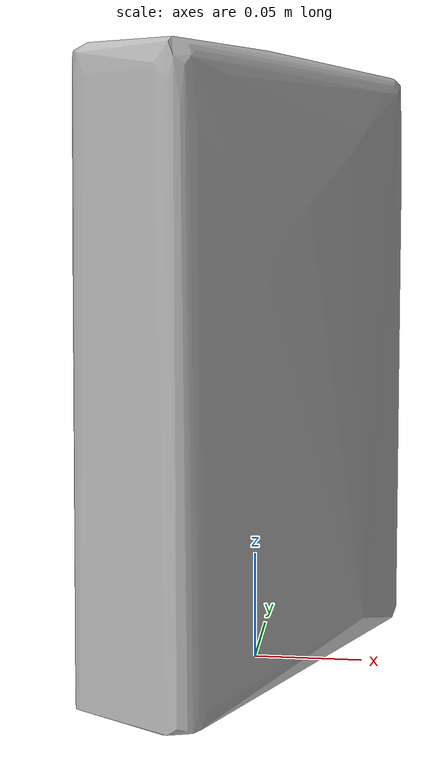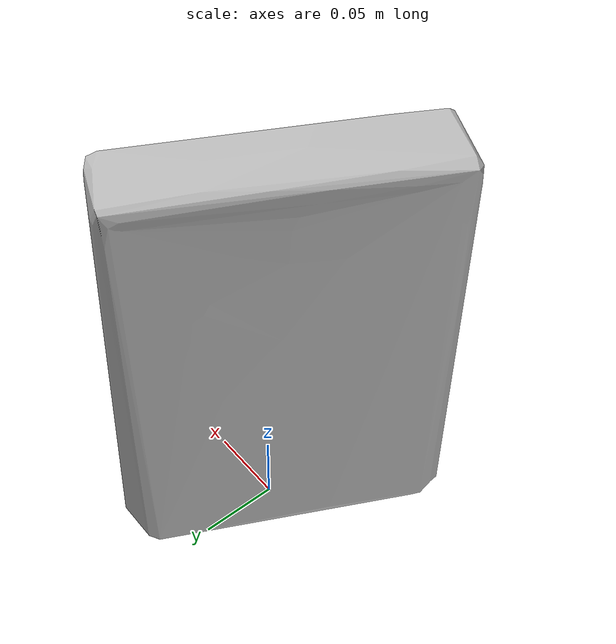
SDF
<?xml version='1.0'?>
<sdf version="1.4">
  <model name="honey_bunches_of_oats_honey_roasted">
    <static>false</static>
    <link name="link">
      <inertial>
        <pose>0.0008548083953833864 -0.011365052530220965 0.1353398946552691 3.123255409539517 -0.0068512377851028825 2.6689869646011624</pose>
        <mass>0.32814865266984183</mass>
        <inertia>
          <ixx>0.0029438842325770044</ixx>
          <ixy>1.2488589981365888e-18</ixy>
          <ixz>1.746979615096785e-20</ixz>
          <iyy>0.002054897289235628</iyy>
          <iyz>3.139250692328792e-20</iyz>
          <izz>0.0011031010443872656</izz>
        </inertia>
      </inertial>
      <collision name="collision">
        <geometry>
          <mesh>
            <!-- Use a downsampled mesh for collisions -->
            <uri>model:///honey_bunches_of_oats_honey_roasted/honey_bunches_of_oats_honey_roasted_250_collision.obj</uri>
	        </mesh>
        </geometry>
        <surface>
      </surface>
      </collision>
      <visual name="visual">
        <geometry>
          <mesh>
            <uri>model:///honey_bunches_of_oats_honey_roasted/optimized_tsdf_texture_mapped_mesh.obj</uri>
	        </mesh>
        </geometry>
        <material>
          <script>
            <uri>model:///honey_bunches_of_oats_honey_roasted/honey_bunches_of_oats_honey_roasted.material</uri>
            <name>honey_bunches_of_oats_honey_roasted</name>
          </script>
        </material>
      </visual>
    </link>
  </model>
</sdf>
